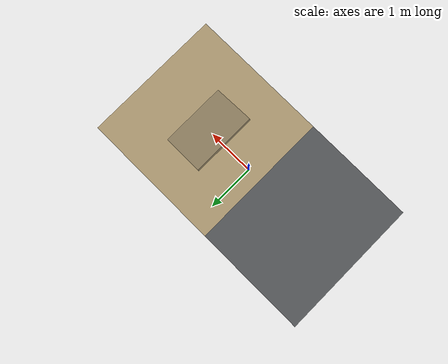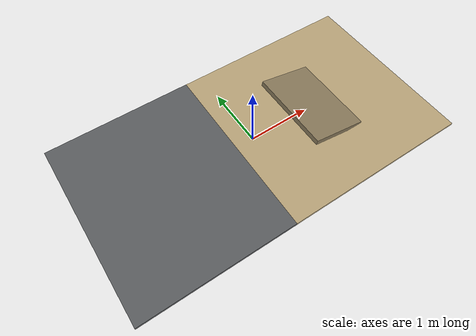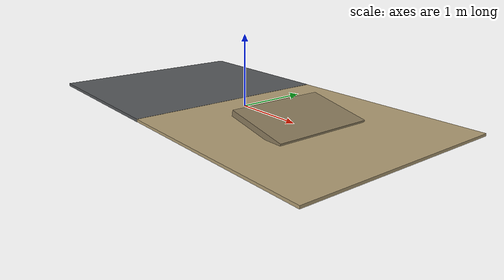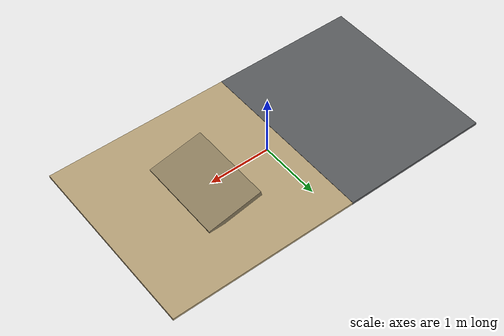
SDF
<?xml version="1.0"?>
<sdf version="1.9">
  <world name="space_challenge_empty">
    <plugin filename="gz-sim-physics-system" name="gz::sim::systems::Physics"/>
    <plugin filename="gz-sim-user-commands-system" name="gz::sim::systems::UserCommands"/>
    <plugin filename="gz-sim-scene-broadcaster-system" name="gz::sim::systems::SceneBroadcaster"/>
    <plugin filename="gz-sim-sensors-system" name="gz::sim::systems::Sensors">
      <render_engine>ogre2</render_engine>
    </plugin>
    <plugin filename="gz-sim-imu-system" name="gz::sim::systems::Imu"/>

    <gravity>0 0 -9.80665</gravity>

    <light name="sun" type="directional">
      <cast_shadows>true</cast_shadows>
      <pose>0 0 5 0 0 0</pose>
      <diffuse>0.9 0.9 0.85 1</diffuse>
      <specular>0.2 0.2 0.2 1</specular>
      <direction>-0.5 0.2 -1</direction>
    </light>

    <model name="rock_section">
      <static>true</static>
      <pose>-1.5 0 0 0 0 0</pose>
      <link name="link">
        <collision name="collision">
          <geometry><box><size>2.4 3.0 0.04</size></box></geometry>
        </collision>
        <visual name="visual">
          <geometry><box><size>2.4 3.0 0.04</size></box></geometry>
          <material><diffuse>0.34 0.35 0.36 1</diffuse></material>
        </visual>
      </link>
    </model>

    <model name="sand_section">
      <static>true</static>
      <pose>1.2 0 0 0 0 0</pose>
      <link name="link">
        <collision name="collision">
          <geometry><box><size>3.0 3.0 0.035</size></box></geometry>
          <surface>
            <friction><ode><mu>0.65</mu><mu2>0.45</mu2></ode></friction>
          </surface>
        </collision>
        <visual name="visual">
          <geometry><box><size>3.0 3.0 0.035</size></box></geometry>
          <material><diffuse>0.70 0.62 0.46 1</diffuse></material>
        </visual>
      </link>
    </model>

    <model name="starter_ramp">
      <static>true</static>
      <pose>1.1 0 0.095 0 0.20 0</pose>
      <link name="link">
        <collision name="collision">
          <geometry><box><size>0.9 1.4 0.08</size></box></geometry>
        </collision>
        <visual name="visual">
          <geometry><box><size>0.9 1.4 0.08</size></box></geometry>
          <material><diffuse>0.54 0.48 0.36 1</diffuse></material>
        </visual>
      </link>
    </model>
  </world>
</sdf>
